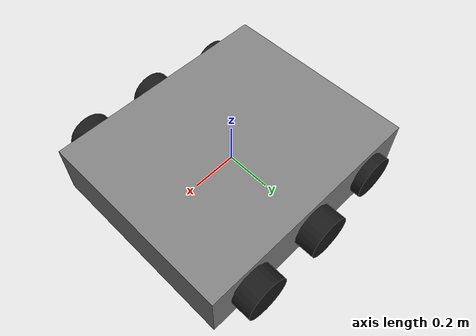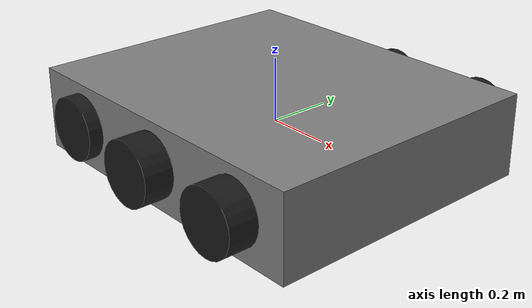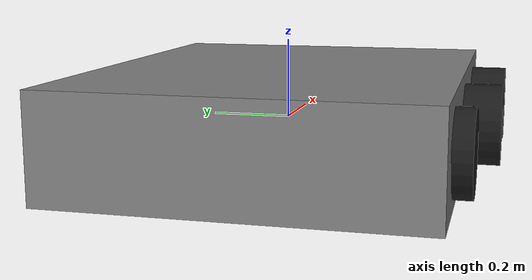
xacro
<?xml version="1.0"?>
<!-- 6-wheel differential drive robot for UWRT -->
<robot xmlns:xacro="http://www.ros.org/wiki/xacro" name="diff_drive_robot">

  <!-- Arguments -->
  <xacro:arg name="prefix" default=""/>
  <xacro:arg name="use_mock_hardware" default="false"/>
  <xacro:arg name="mock_sensor_commands" default="false"/>
  <xacro:arg name="can_interface" default="can0"/>

  <!-- Include robot description -->
  <xacro:include filename="$(find diff_drive)/description/urdf/diff_drive_description.urdf.xacro"/>

  <!-- Include ros2_control configuration -->
  <xacro:include filename="$(find diff_drive)/description/urdf/diff_drive.ros2_control.xacro"/>

  <!-- Instantiate robot description -->
  <xacro:diff_drive_description prefix="$(arg prefix)"/>

  <!-- Instantiate ros2_control -->
  <xacro:diff_drive_ros2_control
    name="DiffDriveSystem"
    prefix="$(arg prefix)"
    use_mock_hardware="$(arg use_mock_hardware)"
    mock_sensor_commands="$(arg mock_sensor_commands)"
    can_interface="$(arg can_interface)"/>

</robot>

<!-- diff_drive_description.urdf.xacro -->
<robot xmlns:xacro="http://www.ros.org/wiki/xacro">

  <xacro:macro name="diff_drive_description" params="prefix">

    <!-- Constants for robot dimensions -->
    <xacro:property name="PI" value="3.1415926535897931"/>
    <xacro:property name="wheel_radius" value="0.1"/>
    <xacro:property name="wheel_width" value="0.115"/>
    <xacro:property name="wheel_separation_front_center" value="0.969"/>
    <xacro:property name="wheel_separation_rear" value="0.877"/>
    <xacro:property name="base_length" value="1.0813779"/>
    <xacro:property name="base_width" value="0.902084416"/>
    <xacro:property name="base_height" value="0.26082"/>

    <!-- Wheel positions (X = front/back, Y = left/right) -->
    <xacro:property name="front_x" value="0.35"/>
    <xacro:property name="center_x" value="0.0"/>
    <xacro:property name="rear_x" value="-0.35"/>

    <!-- Mass properties (arbitrary values for simulation) -->
    <xacro:property name="base_mass" value="50.0"/>
    <xacro:property name="wheel_mass" value="2.0"/>

    <!-- Base Link -->
    <link name="${prefix}base_link">
      <visual>
        <origin xyz="0 0 0" rpy="0 0 0"/>
        <geometry>
          <box size="${base_length} ${base_width} ${base_height}"/>
        </geometry>
        <material name="grey">
          <color rgba="0.5 0.5 0.5 1"/>
        </material>
      </visual>
      <collision>
        <origin xyz="0 0 0" rpy="0 0 0"/>
        <geometry>
          <box size="${base_length} ${base_width} ${base_height}"/>
        </geometry>
      </collision>
      <inertial>
        <origin xyz="0 0 0" rpy="0 0 0"/>
        <mass value="${base_mass}"/>
        <inertia
          ixx="${base_mass / 12.0 * (base_width*base_width + base_height*base_height)}" ixy="0.0" ixz="0.0"
          iyy="${base_mass / 12.0 * (base_length*base_length + base_height*base_height)}" iyz="0.0"
          izz="${base_mass / 12.0 * (base_length*base_length + base_width*base_width)}"/>
      </inertial>
    </link>

    <!-- Wheel macro for reuse -->
    <xacro:macro name="wheel_link" params="name">
      <link name="${prefix}${name}_wheel_link">
        <visual>
          <origin xyz="0 0 0" rpy="${PI/2} 0 0"/>
          <geometry>
            <cylinder length="${wheel_width}" radius="${wheel_radius}"/>
          </geometry>
          <material name="black">
            <color rgba="0.1 0.1 0.1 1"/>
          </material>
        </visual>
        <collision>
          <origin xyz="0 0 0" rpy="${PI/2} 0 0"/>
          <geometry>
            <cylinder length="${wheel_width}" radius="${wheel_radius}"/>
          </geometry>
        </collision>
        <inertial>
          <origin xyz="0 0 0" rpy="${PI/2} 0 0"/>
          <mass value="${wheel_mass}"/>
          <inertia
            ixx="${wheel_mass / 12.0 * (3*wheel_radius*wheel_radius + wheel_width*wheel_width)}" ixy="0.0" ixz="0.0"
            iyy="${wheel_mass / 12.0 * (3*wheel_radius*wheel_radius + wheel_width*wheel_width)}" iyz="0.0"
            izz="${wheel_mass / 2.0 * wheel_radius*wheel_radius}"/>
        </inertial>
      </link>
    </xacro:macro>

    <!-- Create all wheel links -->
    <xacro:wheel_link name="front_left"/>
    <xacro:wheel_link name="front_right"/>
    <xacro:wheel_link name="center_left"/>
    <xacro:wheel_link name="center_right"/>
    <xacro:wheel_link name="rear_left"/>
    <xacro:wheel_link name="rear_right"/>

    <!-- Front wheels -->
    <joint name="${prefix}front_left_wheel_joint" type="continuous">
      <parent link="${prefix}base_link"/>
      <child link="${prefix}front_left_wheel_link"/>
      <origin xyz="${front_x} ${wheel_separation_front_center/2} 0" rpy="0 0 0"/>
      <axis xyz="0 1 0"/>
      <dynamics damping="0.2"/>
    </joint>

    <joint name="${prefix}front_right_wheel_joint" type="continuous">
      <parent link="${prefix}base_link"/>
      <child link="${prefix}front_right_wheel_link"/>
      <origin xyz="${front_x} ${-wheel_separation_front_center/2} 0" rpy="0 0 0"/>
      <axis xyz="0 1 0"/>
      <dynamics damping="0.2"/>
    </joint>

    <!-- Center wheels (inverted axis to match motor direction) -->
    <joint name="${prefix}center_left_wheel_joint" type="continuous">
      <parent link="${prefix}base_link"/>
      <child link="${prefix}center_left_wheel_link"/>
      <origin xyz="${center_x} ${wheel_separation_front_center/2} 0" rpy="0 0 0"/>
      <axis xyz="0 -1 0"/>
      <dynamics damping="0.2"/>
    </joint>

    <joint name="${prefix}center_right_wheel_joint" type="continuous">
      <parent link="${prefix}base_link"/>
      <child link="${prefix}center_right_wheel_link"/>
      <origin xyz="${center_x} ${-wheel_separation_front_center/2} 0" rpy="0 0 0"/>
      <axis xyz="0 -1 0"/>
      <dynamics damping="0.2"/>
    </joint>

    <!-- Rear wheels -->
    <joint name="${prefix}rear_left_wheel_joint" type="continuous">
      <parent link="${prefix}base_link"/>
      <child link="${prefix}rear_left_wheel_link"/>
      <origin xyz="${rear_x} ${wheel_separation_rear/2} 0" rpy="0 0 0"/>
      <axis xyz="0 1 0"/>
      <dynamics damping="0.2"/>
    </joint>

    <joint name="${prefix}rear_right_wheel_joint" type="continuous">
      <parent link="${prefix}base_link"/>
      <child link="${prefix}rear_right_wheel_link"/>
      <origin xyz="${rear_x} ${-wheel_separation_rear/2} 0" rpy="0 0 0"/>
      <axis xyz="0 1 0"/>
      <dynamics damping="0.2"/>
    </joint>

  </xacro:macro>

</robot>
